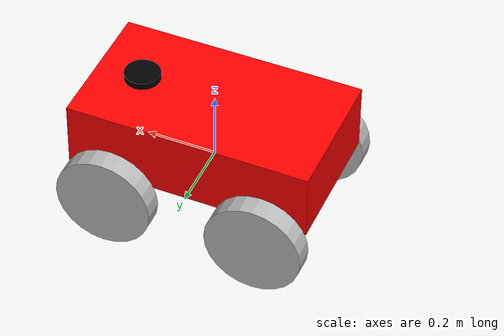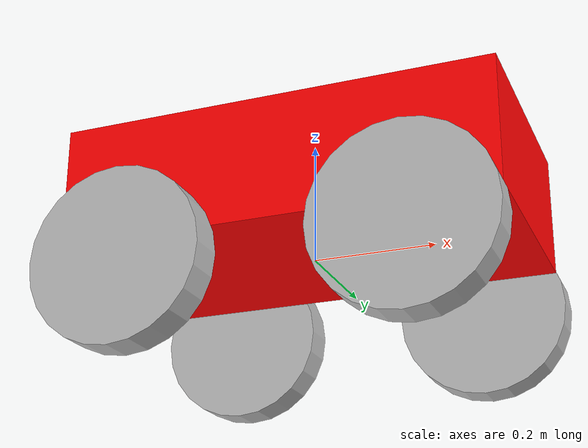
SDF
<?xml version="1.0" ?>
<sdf version="1.5">
  <model name="bearcar">
  <static>false</static>

  <!-- ****************** ROBOT BASE FOOTPRINT ***************************  -->
  <pose>0.0 0.0 0.0 0.0 0.0 0.0</pose>
  <link name="base_footprint"/>

  <!-- ********************** ROBOT BASE *********************************  -->
  <link name="base_link">

    <collision name="base_collision">
      <pose>0 0 0.1 0 0 0</pose>
      <geometry>
        <box>
          <size>0.70 0.39 0.20</size>
        </box>
      </geometry>
    </collision>

    <visual name="base_visual">
      <pose>0 0 0.1 0 0 0</pose>
      <geometry>
        <box>
          <size>0.70 0.39 0.20</size>
        </box>
      </geometry>
      <material>
        <ambient>1.0 0.0 0.0 1.0</ambient>
        <diffuse>1.0 0.0 0.0 1.0</diffuse>
        <specular>0.0 0.0 0.0 1.0</specular>
        <emissive>0.0 0.0 0.0 1.0</emissive>
      </material>
    </visual>
  </link>
  <!-- ********************** CAMERA SETUP *********************************  -->
      <link name="realsense_link">
      <pose>0.3 0 0.10 0 0 0</pose>
      <visual name="realsense_link_visual">
        <pose>0 0 0 -1.57 0 -1.57</pose>
        <geometry>
        <box>
          <size>0.05 0.02 0.02</size>
        </box>
        </geometry>
      </visual>
      <collision name="realsense_link_collision">
        <pose>0 0 0 -1.57 0 -1.57</pose>
        <geometry>
          <box>
            <size>0.02505 0.090 0.025</size>
          </box>
        </geometry>
      </collision>
      <inertial>
        <pose>0 0 0 0 0 0</pose>
        <inertia>
          <ixx>0.001</ixx>
          <ixy>0.000</ixy>
          <ixz>0.000</ixz>
          <iyy>0.001</iyy>
          <iyz>0.000</iyz>
          <izz>0.001</izz>
        </inertia>
        <mass>0.564</mass>
      </inertial>

      <sensor name="cameradepth" type="depth">
        <camera name="camera">
          <horizontal_fov>1.57</horizontal_fov>
          <image>
            <width>1280</width>
            <height>720</height>
          </image>
          <clip>
            <near>0.1</near>
            <far>100</far>
          </clip>
          <noise>
            <type>gaussian</type>
            <mean>0.0</mean>
            <stddev>0.100</stddev>
          </noise>
        </camera>
        <always_on>1</always_on>
        <update_rate>30</update_rate>
        <visualize>0</visualize>
      </sensor>
      <sensor name="cameracolor" type="camera">
        <camera name="camera">
          <horizontal_fov>1.57</horizontal_fov>
          <image>
            <width>1280</width>
            <height>720</height>
            <format>RGB_INT8</format>
          </image>
          <clip>
            <near>0.1</near>
            <far>100</far>
          </clip>
          <noise>
            <type>gaussian</type>
            <mean>0.0</mean>
            <stddev>0.007</stddev>
          </noise>
        </camera>
        <always_on>1</always_on>
        <update_rate>30</update_rate>
        <visualize>1</visualize>
      </sensor>
      <sensor name="cameraired1" type="camera">
        <camera name="camera">
          <horizontal_fov>1.57</horizontal_fov>
          <image>
            <width>1280</width>
            <height>720</height>
            <format>L_INT8</format>
          </image>
          <clip>
            <near>0.1</near>
            <far>100</far>
          </clip>
          <noise>
            <type>gaussian</type>
            <mean>0.0</mean>
            <stddev>0.05</stddev>
          </noise>
        </camera>
        <always_on>1</always_on>
        <update_rate>1</update_rate>
        <visualize>0</visualize>
      </sensor>
      <sensor name="cameraired2" type="camera">
        <camera name="camera">
          <horizontal_fov>1.57</horizontal_fov>
          <image>
            <width>1280</width>
            <height>720</height>
            <format>L_INT8</format>
          </image>
          <clip>
            <near>0.1</near>
            <far>100</far>
          </clip>
          <noise>
            <type>gaussian</type>
            <mean>0.0</mean>
            <stddev>0.05</stddev>
          </noise>
        </camera>
        <always_on>1</always_on>
        <update_rate>1</update_rate>
        <visualize>0</visualize>
      </sensor>
    </link>

    <joint name="realsense_joint" type="fixed">
      <parent>base_link</parent>
      <child>realsense_link</child>
      <pose>0.4 0 0.4 0 0 0</pose>
    </joint>

    <plugin name="camera" filename="librealsense_gazebo_plugin.so">
      <prefix>camera</prefix>
      <depthUpdateRate>1.0</depthUpdateRate>
      <colorUpdateRate>1.0</colorUpdateRate>
      <infraredUpdateRate>1.0</infraredUpdateRate>
      <depthTopicName>aligned_depth_to_color/image_raw</depthTopicName>
      <depthCameraInfoTopicName>depth/camera_info</depthCameraInfoTopicName>
      <colorTopicName>color/image_raw</colorTopicName>
      <colorCameraInfoTopicName>color/camera_info</colorCameraInfoTopicName>
      <infrared1TopicName>infra1/image_raw</infrared1TopicName>
      <infrared1CameraInfoTopicName>infra1/camera_info</infrared1CameraInfoTopicName>
      <infrared2TopicName>infra2/image_raw</infrared2TopicName>
      <infrared2CameraInfoTopicName>infra2/camera_info</infrared2CameraInfoTopicName>
      <colorOpticalframeName>camera_color_optical_frame</colorOpticalframeName>
      <depthOpticalframeName>camera_depth_optical_frame</depthOpticalframeName>
      <infrared1OpticalframeName>camera_left_ir_optical_frame</infrared1OpticalframeName>
      <infrared2OpticalframeName>camera_right_ir_optical_frame</infrared2OpticalframeName>
      <rangeMinDepth>0.3</rangeMinDepth>
      <rangeMaxDepth>5.0</rangeMaxDepth>
      <pointCloud>true</pointCloud>
      <pointCloudTopicName>depth/color/points</pointCloudTopicName>
      <pointCloudCutoff>0.3</pointCloudCutoff>
    </plugin>

  <!-- *********************** IMU SENSOR SETUP **************************  -->
  <link name="imu_link">
    <gravity>true</gravity>
    <sensor name="bmb_imu" type="imu">
      <always_on>true</always_on>
      <update_rate>100</update_rate>
      <visualize>true</visualize>
      <imu>
        <orientation>
          <x>
            <noise type="gaussian">
              <mean>0.0</mean>
              <stddev>2e-3</stddev>
            </noise>
          </x>
          <y>
            <noise type="gaussian">
              <mean>0.0</mean>
              <stddev>2e-3</stddev>
            </noise>
          </y>
          <z>
            <noise type="gaussian">
              <mean>0.0</mean>
              <stddev>2e-3</stddev>
            </noise>
          </z>
        </orientation>
        <angular_velocity>
          <x>
            <noise type="gaussian">
              <mean>0.0</mean>
              <stddev>2e-4</stddev>
            </noise>
          </x>
          <y>
            <noise type="gaussian">
              <mean>0.0</mean>
              <stddev>2e-4</stddev>
            </noise>
          </y>
          <z>
            <noise type="gaussian">
              <mean>0.0</mean>
              <stddev>2e-4</stddev>
            </noise>
          </z>
        </angular_velocity>
        <linear_acceleration>
          <x>
            <noise type="gaussian">
              <mean>0.0</mean>
              <stddev>1.7e-2</stddev>
            </noise>
          </x>
          <y>
            <noise type="gaussian">
              <mean>0.0</mean>
              <stddev>1.7e-2</stddev>
            </noise>
          </y>
          <z>
            <noise type="gaussian">
              <mean>0.0</mean>
              <stddev>1.7e-2</stddev>
            </noise>
          </z>
        </linear_acceleration>
      </imu>
      <plugin name="basic_mobile_bot_imu" filename="libgazebo_ros_imu_sensor.so">
        <initial_orientation_as_reference>false</initial_orientation_as_reference>
        <frame_name>imu_link</frame_name>
        <ros>
          <namespace>/imu</namespace>
          <remapping>~/out:=data</remapping>
        </ros>
      </plugin>
    </sensor>
  </link>

  <!-- ****************************** LIDAR *****************************    -->
  <link name="lidar_link">
    <inertial>
      <pose>0.215 0 0.13 0 0 0</pose>
      <inertia>
        <ixx>0.001</ixx>
        <ixy>0.000</ixy>
        <ixz>0.000</ixz>
        <iyy>0.001</iyy>
        <iyz>0.000</iyz>
        <izz>0.001</izz>
      </inertia>
      <mass>0.114</mass>
    </inertial>

    <collision name="lidar_collision">
      <pose>0.215 0 0.13 0 0 0</pose>
      <geometry>
        <cylinder>
          <radius>0.0508</radius>
          <length>0.18</length>
        </cylinder>
      </geometry>
    </collision>

    <visual name="lidar_visual">
      <pose>0.215 0 0.13 0 0 0</pose>
      <geometry>
        <cylinder>
          <radius>0.0508</radius>
          <length>0.18</length>
        </cylinder>
      </geometry>
      <material>
        <ambient>0.0 0.0 0.0 1.0</ambient>
        <diffuse>0.0 0.0 0.0 1.0</diffuse>
        <specular>0.0 0.0 0.0 1.0</specular>
        <emissive>0.0 0.0 0.0 1.0</emissive>
      </material>
    </visual>

    <sensor name="lidar" type="ray">
      <pose>0.215 0 0.215 0 0 0</pose>
      <always_on>true</always_on>
      <visualize>true</visualize>
      <update_rate>5</update_rate>
      <ray>
        <scan>
          <horizontal>
            <samples>720</samples>
            <resolution>1.000000</resolution>
            <min_angle>-3.14159</min_angle>
            <max_angle>3.14159</max_angle>
          </horizontal>
        </scan>
        <range>
          <min>0.2</min>
          <max>25.0</max>
          <resolution>0.01</resolution>
        </range>
        <noise>
          <type>gaussian</type>
          <mean>0.0</mean>
          <stddev>0.01</stddev>
        </noise>
      </ray>
      <plugin name="scan" filename="libgazebo_ros_ray_sensor.so">
        <ros>
          <remapping>~/out:=scan</remapping>
        </ros>
        <output_type>sensor_msgs/LaserScan</output_type>
        <frame_name>lidar_link</frame_name>
      </plugin>
    </sensor>
  </link>

  <!-- *********************** DRIVE WHEELS ******************************  -->
  <link name="drivewhl_l_link">
    <pose>-0.221 0.23 -0.05 0 1.570796 1.570796</pose>

    <collision name="drivewhl_l_collision">
      <geometry>
        <cylinder>
          <radius>0.14</radius>
          <length>0.06</length>
        </cylinder>
      </geometry>
    </collision>

    <visual name="drivewhl_l_visual">
      <geometry>
        <cylinder>
          <radius>0.14</radius>
          <length>0.06</length>
        </cylinder>
      </geometry>
    </visual>
  </link>

  <link name="drivewhl_r_link">
    <pose>-0.221 -0.23 -0.05 0 1.570796 1.570796</pose>

    <collision name="drivewhl_r_collision">
      <geometry>
        <cylinder>
          <radius>0.14</radius>
          <length>0.06</length>
        </cylinder>
      </geometry>
    </collision>

    <visual name="drivewhl_r_visual">
      <geometry>
        <cylinder>
          <radius>0.14</radius>
          <length>0.06</length>
        </cylinder>
      </geometry>
    </visual>
  </link>

  <link name="drivewhl_fl_link">
    <pose>0.221 0.23 -0.05 0 1.570796 1.570796</pose>

    <collision name="drivewhl_fl_collision">
      <geometry>
        <cylinder>
          <radius>0.14</radius>
          <length>0.06</length>
        </cylinder>
      </geometry>
    </collision>

    <visual name="drivewhl_fl_visual">
      <geometry>
        <cylinder>
          <radius>0.14</radius>
          <length>0.06</length>
        </cylinder>
      </geometry>
    </visual>
  </link>

  <link name="drivewhl_fr_link">
    <pose>0.221 -0.23 -0.05 0 1.570796 1.570796</pose>

    <collision name="drivewhl_fr_collision">
      <geometry>
        <cylinder>
          <radius>0.14</radius>
          <length>0.06</length>
        </cylinder>
      </geometry>
    </collision>

    <visual name="drivewhl_fr_visual">
      <geometry>
        <cylinder>
          <radius>0.14</radius>
          <length>0.06</length>
        </cylinder>
      </geometry>
    </visual>
  </link>

  <!-- ************************ JOINTS ***********************************  -->
  <!-- Pose of the joint is the same as the child link frame -->
  <!-- Axis is the axis of rotation relative to the child link frame -->

  <joint name="base_joint" type="fixed">
    <parent>base_footprint</parent>
    <child>base_link</child>
    <pose>0 0 0 0 0 0</pose>
  </joint>

  <joint name="drivewhl_l_joint" type="revolute">
    <parent>base_link</parent>
    <child>drivewhl_l_link</child>
    <pose>0 0 0 0 0 0</pose>
    <axis>
      <xyz>0 0 1</xyz>
    </axis>
  </joint>

  <joint name="drivewhl_r_joint" type="revolute">
    <parent>base_link</parent>
    <child>drivewhl_r_link</child>
    <pose>0 0 0 0 0 0</pose>
    <axis>
      <xyz>0 0 1</xyz>
    </axis>
  </joint>

  <joint name="drivewhl_fr_joint" type="universal">
    <parent>base_link</parent>
    <child>drivewhl_fr_link</child>
    <pose>0 0 0 0 0 0</pose>
    <axis>
      <xyz>-1 0 0</xyz>
      <limit>
        <!-- +- 50 degrees -->
        <lower>-0.6</lower>
        <upper>0.6</upper>
      </limit>
    </axis>
    <axis2>
      <xyz>0 0 1</xyz>
    </axis2>
  </joint>

  <joint name="drivewhl_fl_joint" type="universal">
    <parent>base_link</parent>
    <child>drivewhl_fl_link</child>
    <pose>0 0 0 0 0 0</pose>
    <axis>
      <xyz>-1 0 0</xyz>
      <limit>
        <!-- +- 50 degrees -->
        <lower>-0.6</lower>
        <upper>0.6</upper>
      </limit>
    </axis>
    <axis2>
      <xyz>0 0 1</xyz>
    </axis2>
  </joint>

  <joint name="imu_joint" type="fixed">
    <parent>base_link</parent>
    <child>imu_link</child>
    <pose>0 0 0 0 0 0</pose>
  </joint>

  <joint name="lidar_joint" type="fixed">
    <parent>base_link</parent>
    <child>lidar_link</child>
    <pose>0 0 0 0 0 0</pose>
  </joint>

 <!-- *********************** WHEEL ODOMETRY ***************************    -->
  <plugin name="ackermann_drive" filename="libgazebo_ros_ackermann_drive.so">

    <!-- Change the ROS topic we will publish the odometry data to -->
    <ros>
      <remapping>cmd_vel:=cmd_ack_vel</remapping>
      <remapping>odom:=wheel/odometry</remapping>
    </ros>

    <update_rate>30</update_rate>

    <!-- wheels -->
    <front_left_joint>drivewhl_fl_joint</front_left_joint>
    <front_right_joint>drivewhl_fr_joint</front_right_joint>
    <rear_left_joint>drivewhl_l_joint</rear_left_joint>
    <rear_right_joint>drivewhl_r_joint</rear_right_joint>
    <left_steering_joint>drivewhl_fl_joint</left_steering_joint>
    <right_steering_joint>drivewhl_fr_joint</right_steering_joint>

    <max_steer>0.5</max_steer>

    <!-- kinematics -->

    <!-- limits -->
    <max_speed>5</max_speed>

      <!-- PID tuning -->
    <left_steering_pid_gain>100 0 5</left_steering_pid_gain>
    <left_steering_i_range>0 0</left_steering_i_range>
    <right_steering_pid_gain>100 0 5</right_steering_pid_gain>
    <right_steering_i_range>0 0</right_steering_i_range>
    <linear_velocity_pid_gain>100 0 5</linear_velocity_pid_gain>
    <linear_velocity_i_range>0 0</linear_velocity_i_range>

    <!-- Receive velocity commands on this ROS topic -->
    <command_topic>cmd_vel</command_topic>

    <!-- output -->
    <!-- When false, publish no wheel odometry data to a ROS topic -->
    <publish_odom>true</publish_odom>

    <!-- When true, publish coordinate transform from odom to base_footprint -->
    <!-- I usually use the robot_localization package to publish this transform -->
    <publish_odom_tf>false</publish_odom_tf>

    <!-- When true, publish coordinate transform from base_link to the wheels -->
    <!-- The robot_state_publisher package is often used to publish this transform -->
    <publish_wheel_tf>true</publish_wheel_tf>

    <odometry_topic>odom</odometry_topic>
    <odometry_frame>odom</odometry_frame>
    <robot_base_frame>base_footprint</robot_base_frame>

  </plugin>

 <!-- *********************** JOINT STATE PUBLISHER *********************   -->

  </model>
</sdf>
